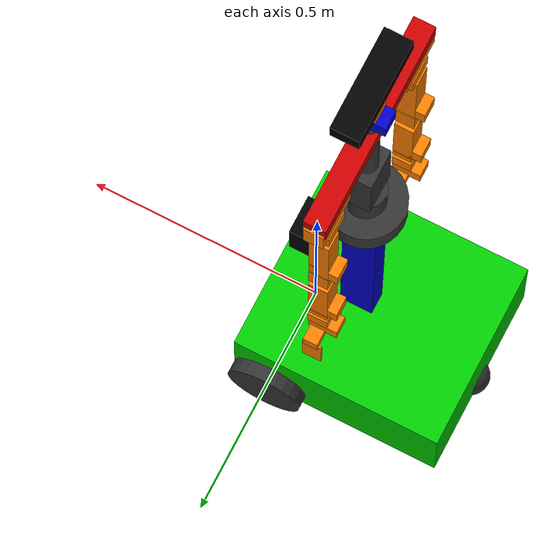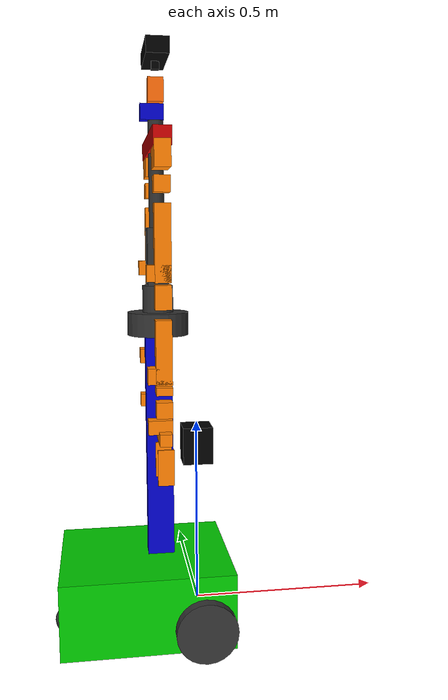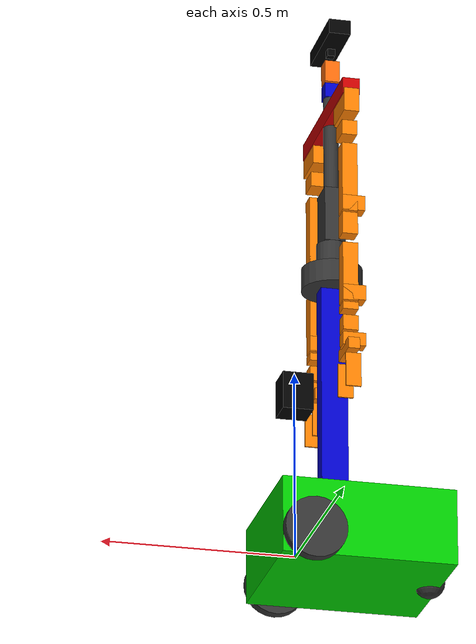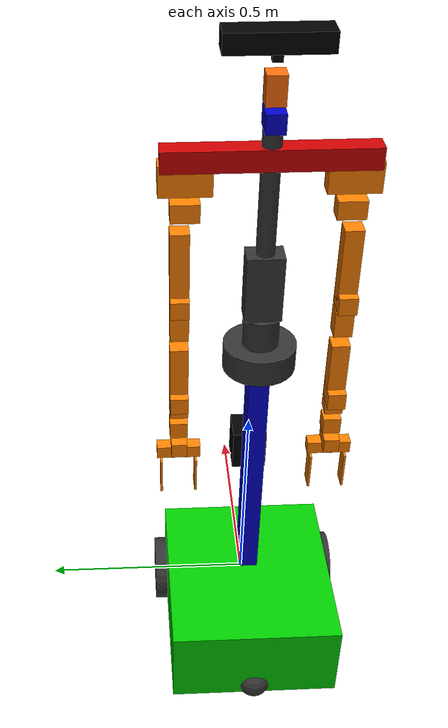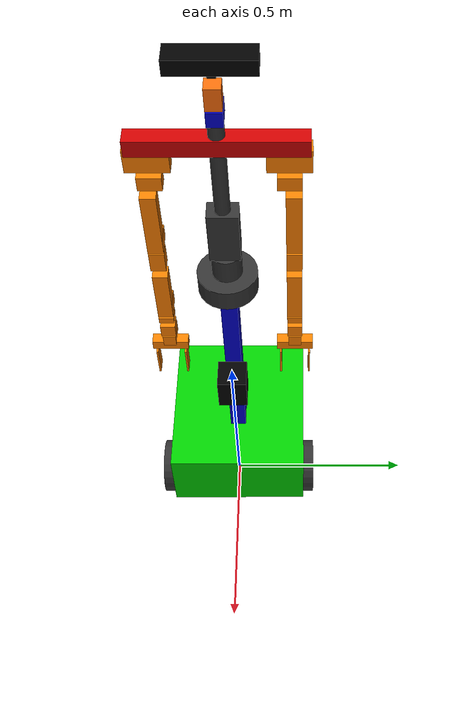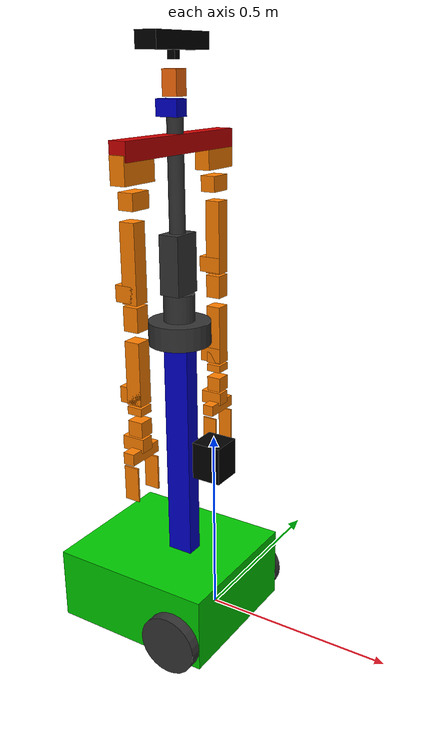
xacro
<?xml version="1.0"?>
<robot name="justina" xmlns:xacro="http://www.ros.org/wiki/xacro">
  <!-- INCLUDES -->
    <xacro:include filename="$(find justina_description)/urdf/test_parameters.xacro" />

    <!-- BASE LINK -->
    <link name="base_link">
        <material name="orange"/>
        <!-- pose and inertial -->
        <pose>0 0 0 0 0 0</pose>
        <inertial>
            <origin rpy="0 0 0" xyz="${-base_size_x/2 + wheel_radius} 0 ${wheel_radius/2}"/>
            <mass value="${base_mass}"/>
            <xacro:box_inertia mass="${base_mass}" x="${base_size_x}" y="${base_size_y}" z="${base_size_z}"/>
        </inertial>
        <!-- body -->
        <collision name="base_front_collision">
            <origin rpy="0 0 0" xyz="${-base_size_x/2 + wheel_radius} 0 ${wheel_radius/2}"/>
            <geometry>
                <box size="${base_size_x} ${base_size_y} ${base_size_z}"/>
            </geometry>
        </collision>
        <visual>
            <origin rpy="0 0 0" xyz="${-base_size_x/2 + wheel_radius} 0 ${wheel_radius/2}"/>
            <geometry>
                <box size="${base_size_x} ${base_size_y} ${base_size_z}"/>
            </geometry>
            <material name="green"/>
        </visual>
        <!-- caster rear -->
        <collision name="caster_front_collision">
            <origin rpy=" 0 0 0" xyz="-${base_size_x-wheel_radius-wheel_radius/4} 0 ${-wheel_radius/2}"/>
            <geometry>
                <sphere radius="${wheel_radius/2}"/>
            </geometry>
        </collision>
        <visual>
            <origin rpy=" 0 0 0" xyz="-${base_size_x-wheel_radius-wheel_radius/4} 0 ${-wheel_radius/2}"/>
            <geometry>
                <sphere radius="${wheel_radius/2}"/>
            </geometry>
            <material name="gray"/>
        </visual>
    </link>
    <!-- LEFT WHEEL LINK -->
    <link name="left_wheel_link">
        <inertial>
            <mass value="${wheel_mass}"/>
            <origin rpy="0 1.5707 1.5707" xyz="0 0 0"/>
            <xacro:cylinder_inertia mass="${wheel_mass}" r="${wheel_radius}" l="${wheel_width}"/>
        </inertial>
        <collision name="left_wheel_collision">
            <origin rpy="0 1.5707 1.5707" xyz="0 0 0"/>
            <geometry>
                <cylinder radius="${wheel_radius}" length="${wheel_width}"/>
            </geometry>
        </collision>
        <visual>
            <origin rpy="0 1.5707 1.5707" xyz="0 0 0"/>
            <geometry>
                <cylinder radius="${wheel_radius}" length="${wheel_width}"/>
            </geometry>
            <material name="gray"/>
        </visual>
    </link>
    <!-- LEFT WHEEL JOINT -->
    <joint name="left_motor" type="continuous">
        <origin rpy="0 0 0" xyz="0.0 ${base_size_y/2+wheel_width/2} 0.0"/>
        <child link="left_wheel_link"/>
        <parent link="base_link"/>
        <axis rpy="0 0 0" xyz="0 1 0"/>
        <dynamics damping="${motor_damping}" friction="${motor_friction}"/>
    </joint>
    <!-- RIGHT WHEEL LINK -->
    <link name="right_wheel_link">
        <inertial>
            <mass value="${wheel_mass}"/>
            <origin rpy="0 1.5707 1.5707" xyz="0 0 0"/>
            <xacro:cylinder_inertia mass="${wheel_mass}" r="${wheel_radius}" l="${wheel_width}"/>
        </inertial>
        <collision name="right_wheel_collision">
            <origin rpy="0 1.5707 1.5707" xyz="0 0 0"/>
            <geometry>
                <cylinder radius="${wheel_radius}" length="${wheel_width}"/>
            </geometry>
        </collision>
        <visual>
            <origin rpy="0 1.5707 1.5707" xyz="0 0 0"/>
            <geometry>
                <cylinder radius="${wheel_radius}" length="${wheel_width}"/>
            </geometry>
            <material name="gray"/>
        </visual>
    </link>
    <!-- RIGHT WHEEL JOINT -->
    <joint name="right_motor" type="continuous">
        <origin rpy="0 0 0" xyz="0 ${-base_size_y/2-wheel_width/2} 0"/>
        <child link="right_wheel_link"/>
        <parent link="base_link"/>
        <axis rpy="0 0 0" xyz="0 1 0"/>
        <dynamics damping="${motor_damping}" friction="${motor_friction}"/>
    </joint>
    <!-- TRANSMISSIONS -->
    <transmission name="left_motor_transmission">
        <type>transmission_interface/SimpleTransmission</type>
        <joint name="left_motor">
            <hardwareInterface>hardware_interface/EffortJointInterface</hardwareInterface>
        </joint>
        <actuator name="left_motor">
            <hardwareInterface>hardware_interface/EffortJointInterface</hardwareInterface>
            <mechanicalReduction>1</mechanicalReduction>
        </actuator>
    </transmission>
    <transmission name="right_motor_transmission">
        <type>transmission_interface/SimpleTransmission</type>
        <joint name="right_motor">
            <hardwareInterface>hardware_interface/EffortJointInterface</hardwareInterface>
        </joint>
        <actuator name="right_motor">
            <hardwareInterface>hardware_interface/EffortJointInterface</hardwareInterface>
            <mechanicalReduction>1</mechanicalReduction>
        </actuator>
    </transmission>

    <gazebo reference="left_wheel_link">
      <mu1 value="100.0" />
      <mu2 value="100.0" />
      <kp  value="1000000.0" />
      <kd  value="1.0" />
      <maxVel  value="100.0" />
      <minDepth  value="0.0" />
    </gazebo>

    <gazebo reference="right_wheel_link">
      <mu1 value="100.0" />
      <mu2 value="100.0" />
      <kp  value="1000000.0" />
      <kd  value="1.0" />
      <maxVel  value="100.0" />
      <minDepth  value="0.0" />
    </gazebo>

    <gazebo reference="base_link">
      <mu1 value="0.0" />
      <mu2 value="0.0" />
      <kp  value="1000000.0" />
      <kd  value="1.0" />
    </gazebo>
    <!-- GAZEBO CONTROL -->
    <gazebo>
        <plugin name="differential_drive_controller" filename="libgazebo_ros_diff_drive.so">
            <publishWheelTF>true</publishWheelTF>
            <robotNamespace>/</robotNamespace>
            <publishTf>1</publishTf>
            <publishWheelJointState>false</publishWheelJointState>
            <alwaysOn>true</alwaysOn>
            <updateRate>100.0</updateRate>
            <leftJoint>left_motor</leftJoint>
            <rightJoint>right_motor</rightJoint>
            <wheelSeparation>${base_size_y+wheel_width}</wheelSeparation>
            <wheelDiameter>${2*wheel_radius}</wheelDiameter>
            <broadcastTF>1</broadcastTF>
            <wheelTorque>20.0</wheelTorque>
            <wheelAcceleration>5</wheelAcceleration>
            <commandTopic>cmd_vel</commandTopic>
            <odometryFrame>odom</odometryFrame>
            <odometryTopic>odom</odometryTopic>
            <pose_covariance_diagonal>[1.0, 1.0, 0.0, 0.0, 0.0, 1.0]</pose_covariance_diagonal>
            <twist_covariance_diagonal>[0.01, 0.0, 0.0, 0.0, 0.0, 0.1]</twist_covariance_diagonal>
            <gaussianNoise>0.05</gaussianNoise>
            <robotBaseFrame>base_link</robotBaseFrame>
            <legacyMode>false</legacyMode>
            <publishOdomTF>true</publishOdomTF>
            <odometrySource>world</odometrySource>
        </plugin>
    </gazebo>

    <!-- LASER LINK AND PLUGINS -->
    <link name="laser_link">
      <visual>
        <origin xyz="0 0 0" rpy="0 0 0"/>
        <geometry> <box size="0.08 0.08 0.1"/></geometry>
        <material name="black"/>
      </visual>
      <collision>
        <origin xyz="0 0 0" rpy="0 0 0"/>
        <geometry> <box size="0.08 0.08 0.1"/></geometry>
      </collision>
      <inertial>
        <origin xyz="0 0 0" rpy="0 0 0"/>
        <mass value="0.1"/>
        <inertia
            ixx="0.000136667" ixy="0.0" ixz="0.0"
            iyy="0.000136667" iyz="0.0"
            izz="0.000106667"/>
      </inertial>
    </link>
    <joint name="laser_connect" type="fixed">
      <origin xyz="0 0 0.44" />
      <parent link="base_link"/>
      <child link="laser_link"/>
    </joint>
    <gazebo reference="laser_link">
    <sensor type="ray" name="hokuyo_sensor">
      <pose>0 0 0 0 0 0</pose>
      <visualize>true</visualize>
      <update_rate>10</update_rate>
      <ray>
        <scan>
          <horizontal>
            <samples>370</samples>
            <resolution>0.5</resolution>
            <min_angle>-1.570796</min_angle>
            <max_angle>1.570796</max_angle>
          </horizontal>
        </scan>
        <range>
          <min>0.10</min>
          <max>10.0</max>
          <resolution>0.01</resolution>
        </range>
        <noise>
          <type>gaussian</type>
          <mean>0.0</mean>
          <stddev>0.01</stddev>
        </noise>
      </ray>
      <plugin name="gazebo_ros_hokuyo_controller" filename="libgazebo_ros_laser.so">
        <topicName>/scan</topicName>
        <frameName>laser_link</frameName>
      </plugin>
    </sensor>
    </gazebo>

        <!--
      SPINE LINKS AND JOINTS
    -->
    <link name="spine_link">
      <visual>
        <origin xyz= "0 0 -0.3" rpy="0 0 0"/>
        <geometry><box size="0.07 0.045 0.7"/></geometry>
        <material name="blue"/>
      </visual>
      <collision>
        <origin xyz= "0 0 -0.3" rpy="0 0 0"/>
        <geometry><box size="0.07 0.045 0.7"/></geometry>
      </collision>
      <inertial>
        <origin xyz="0 0 0" rpy="0 0 0"/>
        <mass value="0.1"/>
        <inertia
            ixx="0.001031" ixy="0.0" ixz="0.0"
            iyy="0.001025" iyz="0.0"
            izz="0.00014"/>
      </inertial>
    </link>

    <joint name="spine_connect" type="fixed">
      <origin xyz= "-0.1 0 0.71" rpy="0 0 0"/>
      <parent link="base_link"/>
      <child link="spine_link"/>
    </joint>

    <!--
        WAIST LINKS AND JOINTS
    -->
    <link name="waist_link">
      <visual>
        <origin xyz= "0 0 -0.1" rpy="0 0 0"/>
        <geometry><cylinder length="0.06" radius="0.08"/></geometry>
        <material name="grey"/>
      </visual>
      <collision>
        <origin xyz= "0 0 -0.1" rpy="0 0 0"/>
        <geometry><cylinder length="0.06" radius="0.08"/></geometry>
      </collision>
      <visual>
        <origin xyz= "0 0 -0.04" rpy="0 0 0"/>
        <geometry><cylinder length="0.08" radius="0.04"/></geometry>
        <material name="grey"/>
      </visual>
      <collision>
        <origin xyz= "0 0 -0.04" rpy="0 0 0"/>
        <geometry><cylinder length="0.08" radius="0.04"/></geometry>
      </collision>
      <visual>
        <origin xyz= "0 0 0.075" rpy="0 0 0"/>
        <geometry><box size="0.055 0.08 0.15" /></geometry>
        <material name="grey"/>
      </visual>
      <collision>
        <origin xyz= "0 0 0.075" rpy="0 0 0"/>
        <geometry><box size="0.055 0.08 0.15" /></geometry>
      </collision>
      <visual>
        <origin xyz= "0 0 0.285" rpy="0 0 0"/>
        <geometry><cylinder length="0.27" radius="0.02"/></geometry>
        <material name="gray"/>
      </visual>
      <collision>
        <origin xyz= "0 0 0.285" rpy="0 0 0"/>
        <geometry><cylinder length="0.27" radius="0.02"/></geometry>
      </collision>
      <inertial>
        <origin xyz="0 0 0" rpy="0 0 0"/>
        <mass value="0.5"/>
        <inertia
            ixx="0.00258333" ixy="0.0" ixz="0.0"
            iyy="0.00258333" iyz="0.0"
            izz="0.0045"/>
      </inertial>
    </link>

    <joint name="waist_connect" type="fixed">
      <origin xyz= "0 0 0.16" rpy="0 0 0"/>
      <parent link="spine_link"/>
      <child link="waist_link"/>
    </joint>

    <link name="shoulders_link">
      <visual>
        <origin xyz= "0 0 0" rpy="0 0 0"/>
        <geometry><box size="0.045 0.43 0.045"/></geometry>
        <material name="red"/>
      </visual>
      <collision>
        <origin xyz= "0 0 0" rpy="0 0 0"/>
        <geometry><box size="0.045 0.43 0.045"/></geometry>
      </collision>
      <inertial>
        <origin xyz="0 0 0" rpy="0 0 0"/>
        <mass value="0.5"/>
        <inertia
            iyy="0.00075" ixy="0.0" ixz="0.0"
            ixx="0.003504" iyz="0.0"
            izz="0.003504"/>
      </inertial>
    </link>

    <joint name="shoulders_connect" type="fixed">
      <origin xyz="0 0 0.36" rpy="0 0 0"/>
      <parent link="waist_link"/>
      <child link="shoulders_link"/>
    </joint>

    <!--
      LEFT ARM LINKS AND JOINTS
  -->
  <link name="shoulders_left_link">
    <visual>
      <origin xyz="0 -0.01 0.02" rpy = "0 0 0"/>
      <geometry>
        <box size = "0.04025 0.108 0.065"/>
      </geometry>
      <material name = "la_material"><color rgba="1.0 0.5 0 1"/></material>
    </visual>
    <collision>
      <origin xyz="0 -0.01 0.02" rpy = "0 0 0"/>
      <geometry>
        <box size = "0.04025 0.108 0.065"/>
      </geometry>
    </collision>
    <inertial>
      <origin xyz="0 -0.01 0.02" rpy = "0 0 0"/>
      <mass value="0.125"/>
      <inertia
        ixx="0.0015" ixy="0.0" ixz="0.0"
        iyy="0.002175" iyz="0.0"
        izz="0.003075"/>
    </inertial>
  </link>
  <link name="left_arm_link1">
    <visual>
      <origin xyz="0 -0.01 -0.04881" rpy = "0 0 0"/>
      <geometry>
        <box size = "0.04025 0.06 0.04025"/>
      </geometry>
      <material name = "la_material"><color rgba="1.0 0.5 0 1"/></material>
    </visual>
    <collision>
      <origin xyz="0 -0.01 -0.04881" rpy = "0 0 0"/>
      <geometry>
        <box size = "0.04025 0.06 0.04025"/>
      </geometry>
    </collision>
    <inertial>
      <origin xyz="0 -0.01 -0.04881" rpy = "0 0 0"/>
      <mass value="0.125"/>
      <inertia
        ixx="0.0015" ixy="0.0" ixz="0.0"
        iyy="0.002175" iyz="0.0"
        izz="0.003075"/>
    </inertial>
  </link>
  <link name="left_arm_link2">
    <visual>
      <origin xyz="0 0 -0.125" rpy = "0 0 0"/>
      <geometry>
        <box size = "0.04025 0.04025 0.19"/>
      </geometry>
      <material name = "la_material"><color rgba="1.0 0.5 0 1"/></material>
    </visual>
    <visual>
      <origin xyz="-0.01 0 -0.197" rpy = "0 0 0"/>
      <geometry>
        <box size = "0.06 0.04025 0.04025"/>
      </geometry>
      <material name = "la_material"><color rgba="1.0 0.5 0 1"/></material>
    </visual>
    <collision>
      <origin xyz="0 0 -0.125" rpy = "0 0 0"/>
      <geometry>
        <box size = "0.04025 0.04025 0.19"/>
      </geometry>
    </collision>
    <collision>
      <origin xyz="-0.01 0 -0.197" rpy = "0 0 0"/>
      <geometry>
        <box size = "0.06 0.04025 0.04025"/>
      </geometry>
    </collision>
    <inertial>
      <origin xyz="0 0 -0.175" rpy = "0 0 0"/>
      <mass value="0.155"/>
      <inertia
        ixx="0.0015" ixy="0.0" ixz="0.0"
        iyy="0.002175" iyz="0.0"
        izz="0.003075"/>
    </inertial>
  </link>
  <link name="left_arm_link3">
    <visual>
      <origin xyz="0 0 -0.04" rpy = "0 0 0"/>
      <geometry>
        <box size = "0.04025 0.04025 0.06"/>
      </geometry>
      <material name = "la_material"><color rgba="1.0 0.5 0 1"/></material>
    </visual>
    <collision>
      <origin xyz="0 0 -0.04" rpy = "0 0 0"/>
      <geometry>
        <box size = "0.04025 0.04025 0.06"/>
      </geometry>
    </collision>
    <inertial>
      <origin xyz="0 0 -0.04" rpy = "0 0 0"/>
      <mass value="0.125"/>
      <inertia
        ixx="0.0015" ixy="0.0" ixz="0.0"
        iyy="0.002175" iyz="0.0"
        izz="0.003075"/>
    </inertial>
  </link>
  <link name="left_arm_link4">
    <visual>
      <origin xyz="0 0 -0.11" rpy = "0 0 0"/>
      <geometry>
        <box size = "0.04025 0.04025 0.16"/>
      </geometry>
      <material name = "la_material"><color rgba="1.0 0.5 0 1"/></material>
    </visual>
    <visual>
      <origin xyz="-0.01 0 -0.167" rpy = "0 0 0"/>
      <geometry>
        <box size = "0.06 0.04025 0.04025"/>
      </geometry>
      <material name = "la_material"><color rgba="1.0 0.5 0 1"/></material>
    </visual>
    <collision>
      <origin xyz="0 0 -0.11" rpy = "0 0 0"/>
      <geometry>
        <box size = "0.04025 0.04025 0.16"/>
      </geometry>
    </collision>
    <collision>
      <origin xyz="-0.01 0 -0.167" rpy = "0 0 0"/>
      <geometry>
        <box size = "0.06 0.04025 0.04025"/>
      </geometry>
    </collision>
    <inertial>
      <origin xyz="-0.01 0 -0.147" rpy = "0 0 0"/>
      <mass value="0.125"/>
      <inertia
        ixx="0.0015" ixy="0.0" ixz="0.0"
        iyy="0.002175" iyz="0.0"
        izz="0.003075"/>
    </inertial>
  </link>
  <link name="left_arm_link5">
    <visual>
      <origin xyz="0 0 -0.025" rpy = "0 0 0"/>
      <geometry>
        <box size = "0.04025 0.04025 0.02"/>
      </geometry>
      <material name = "la_material"><color rgba="1.0 0.5 0 1"/></material>
    </visual>
    <collision>
      <origin xyz="0 0 -0.025" rpy = "0 0 0"/>
      <geometry>
        <box size = "0.04025 0.04025 0.02"/>
      </geometry>
    </collision>
    <inertial>
      <origin xyz="0 0 -0.025" rpy = "0 0 0"/>
      <mass value="0.125"/>
      <inertia
        ixx="0.0015" ixy="0.0" ixz="0.0"
        iyy="0.002175" iyz="0.0"
        izz="0.003075"/>
    </inertial>
  </link>
  <link name="left_arm_link6">
    <visual>
      <origin xyz="0 0 -0.042" rpy = "0 0 0"/>
      <geometry>
        <box size = "0.04025 0.04025 0.04"/>
      </geometry>
      <material name = "la_material"><color rgba="1.0 0.5 0 1"/></material>
    </visual>
    <collision>
      <origin xyz="0 0 -0.042" rpy = "0 0 0"/>
      <geometry>
        <box size = "0.04025 0.04025 0.04"/>
      </geometry>
    </collision>
    <inertial>
      <origin xyz="0 0 -0.042" rpy = "0 0 0"/>
      <mass value="0.125"/>
      <inertia
        ixx="0.0015" ixy="0.0" ixz="0.0"
        iyy="0.002175" iyz="0.0"
        izz="0.003075"/>
    </inertial>
  </link>
  <link name="left_arm_link7">
    <visual>
      <origin xyz="-0.01 0 -0.03" rpy = "0 0 0"/>
      <geometry>
        <box size = "0.06 0.03525 0.03525"/>
      </geometry>
      <material name = "la_material"><color rgba="1.0 0.5 0 1"/></material>
    </visual>
    <visual>
      <origin xyz="0 0 -0.055" rpy = "0 0 0"/>
      <geometry>
        <box size = "0.03 0.1 0.03"/>
      </geometry>
      <material name = "la_material"><color rgba="1.0 0.5 0 1"/></material>
    </visual>
    <collision>
      <origin xyz="-0.01 0 -0.03" rpy = "0 0 0"/>
      <geometry>
        <box size = "0.06 0.03525 0.03525"/>
      </geometry>
    </collision>
    <collision>
      <origin xyz="0 0 -0.055" rpy = "0 0 0"/>
      <geometry>
        <box size = "0.03 0.1 0.03"/>
      </geometry>
    </collision>
    <inertial>
      <origin xyz="-0.01 0 -0.05" rpy = "0 0 0"/>
      <mass value="0.125"/>
      <inertia
        ixx="0.0015" ixy="0.0" ixz="0.0"
        iyy="0.002175" iyz="0.0"
        izz="0.003075"/>
    </inertial>
  </link>
  <link name="left_arm_grip_left">
    <visual>
      <origin xyz="0 0 -0.065" rpy = "0 0 0"/>
      <geometry>
        <box size = "0.04 0.005 0.09"/>
      </geometry>
      <material name = "la_material"><color rgba="1.0 0.5 0 1"/></material>
    </visual>
    <collision>
      <origin xyz="0 0 -0.065" rpy = "0 0 0"/>
      <geometry>
        <box size = "0.04 0.005 0.09"/>
      </geometry>
    </collision>
    <inertial>
      <origin xyz="0 0 -0.065" rpy = "0 0 0"/>
      <mass value="0.125"/>
      <inertia
        ixx="0.0015" ixy="0.0" ixz="0.0"
        iyy="0.002175" iyz="0.0"
        izz="0.003075"/>
    </inertial>
  </link>
  <link name="left_arm_grip_right">
    <visual>
      <origin xyz="0 0 -0.065" rpy = "0 0 0"/>
      <geometry>
        <box size = "0.04 0.005 0.09"/>
      </geometry>
      <material name = "la_material"><color rgba="1.0 0.5 0 1"/></material>
    </visual>
    <collision>
      <origin xyz="0 0 -0.065" rpy = "0 0 0"/>
      <geometry>
        <box size = "0.04 0.005 0.09"/>
      </geometry>
    </collision>
    <inertial>
      <origin xyz="0 0 -0.065" rpy = "0 0 0"/>
      <mass value="0.125"/>
      <inertia
        ixx="0.0015" ixy="0.0" ixz="0.0"
        iyy="0.002175" iyz="0.0"
        izz="0.003075"/>
    </inertial>
  </link>
  <link name="left_arm_grip_center"/>

  <joint name="shoulders_left_connect" type="fixed">
    <origin xyz="0 0.175 -0.06" rpy="0 0 0"/>
    <parent link="shoulders_link"/>
    <child link="shoulders_left_link"/>
  </joint>
  <joint name="la_1_joint" type="revolute">
    <origin xyz="0 0.0 0" rpy="0 0 0"/>
    <parent link="shoulders_left_link"/>
    <child link="left_arm_link1"/>
    <axis xyz="0 -1 0" />
    <dynamics damping ="0.1" />
    <limit effort="16.0" velocity="3.0" lower="-1.7" upper="1.7"/>
  </joint>
  <joint name="la_2_joint" type="revolute">
    <origin xyz="0 0.0 -0.06381" rpy="0 0 0"/>
    <parent link="left_arm_link1"/>
    <child link="left_arm_link2"/>
    <axis xyz="1 0 0" />
    <dynamics damping ="0.1" />
    <limit effort="8.0" velocity="3.0" lower="-0.75" upper="1.85"/>
  </joint>
  <joint name="la_3_joint" type="revolute">
    <origin xyz="0 0.0 -0.215" rpy="0 0 0"/>
    <parent link="left_arm_link2"/>
    <child link="left_arm_link3"/>
    <axis xyz="0 0 1" />
    <dynamics damping ="0.1" />
    <limit effort="6.0" velocity="3.0" lower="-2.5" upper="2.5"/>
  </joint>
  <joint name="la_4_joint" type="revolute">
    <origin xyz="0 0.0 -0.065" rpy="0 0 0"/>
    <parent link="left_arm_link3"/>
    <child link="left_arm_link4"/>
    <axis xyz="0 -1 0" />
    <dynamics damping ="0.1" />
    <limit effort="8.0" velocity="3.0" lower="-1.8" upper="1.8"/>
  </joint>
  <joint name="la_5_joint" type="revolute">
    <origin xyz="0 0.0 -0.18" rpy="0 0 0"/>
    <parent link="left_arm_link4"/>
    <child link="left_arm_link5"/>
    <axis xyz="0 0 1" />
    <dynamics damping ="0.1" />
    <limit effort="6.0" velocity="3.0" lower="-2.5" upper="2.5"/>
  </joint>
  <joint name="la_6_joint" type="revolute">
    <origin xyz="0 0.0 -0.03" rpy="0 0 0"/>
    <parent link="left_arm_link5"/>
    <child link="left_arm_link6"/>
    <axis xyz="0 -1 0" />
    <dynamics damping ="0.1" />
    <limit effort="6.0" velocity="3.0" lower="-1.4" upper="1.57"/>
  </joint>
  <joint name="la_7_joint" type="revolute">
    <origin xyz="0 0.0 -0.055" rpy="0 0 0"/>
    <parent link="left_arm_link6"/>
    <child link="left_arm_link7"/>
    <axis xyz="0 0 1" />
    <dynamics damping ="0.1" />
    <limit effort="3.0" velocity="3.0" lower="-2.5" upper="2.5"/>
  </joint>
  <joint name="la_grip_left" type="revolute">
    <origin xyz="0 0.04 -0.06" rpy="0 0 0"/>
    <parent link="left_arm_link7"/>
    <child link="left_arm_grip_left"/>
    <axis xyz="1 0 0" />
    <dynamics damping ="0.1" />
    <limit effort="3.0" velocity="3.0" lower="-0.3" upper="1.5"/>
  </joint>
  <joint name="la_grip_right" type="revolute">
    <origin xyz="0 -0.04 -0.06" rpy="0 0 0"/>
    <parent link="left_arm_link7"/>
    <child link="left_arm_grip_right"/>
    <axis xyz="-1 0 0" />
    <dynamics damping ="0.1" />
    <limit effort="3.0" velocity="3.0" lower="-0.3" upper="1.5"/>
  </joint>
  <joint name="la_grip_center_joint" type="fixed">
    <origin xyz="0 0 -0.13" rpy="0 0 0"/>
    <parent link="left_arm_link7"/>
    <child link="left_arm_grip_center"/>
  </joint>

  <!--
      RIGHT ARM LINKS AND JOINTS
  -->
  <link name="shoulders_right_link">
    <visual>
      <origin xyz="0 0.01 0.02" rpy = "0 0 0"/>
      <geometry>
        <box size = "0.04025 0.108 0.065"/>
      </geometry>
      <material name = "la_material"><color rgba="1.0 0.5 0 1"/></material>
    </visual>
    <collision>
      <origin xyz="0 0.01 0.02" rpy = "0 0 0"/>
      <geometry>
        <box size = "0.04025 0.108 0.065"/>
      </geometry>
    </collision>
    <inertial>
      <origin xyz="0 0.01 0.02" rpy = "0 0 0"/>
      <mass value="0.125"/>
      <inertia
        ixx="0.0015" ixy="0.0" ixz="0.0"
        iyy="0.002175" iyz="0.0"
        izz="0.003075"/>
    </inertial>
  </link>
  <link name="right_arm_link1">
    <visual>
      <origin xyz="0 0.01 -0.04881" rpy = "0 0 0"/>
      <geometry>
        <box size = "0.04025 0.06 0.04025"/>
      </geometry>
      <material name = "la_material"><color rgba="1.0 0.5 0 1"/></material>
    </visual>
    <collision>
      <origin xyz="0 0.01 -0.04881" rpy = "0 0 0"/>
      <geometry>
        <box size = "0.04025 0.06 0.04025"/>
      </geometry>
    </collision>
    <inertial>
      <origin xyz="0 0.01 -0.04881" rpy = "0 0 0"/>
      <mass value="0.125"/>
      <inertia
        ixx="0.0015" ixy="0.0" ixz="0.0"
        iyy="0.002175" iyz="0.0"
        izz="0.003075"/>
    </inertial>
  </link>
  <link name="right_arm_link2">
    <visual>
      <origin xyz="0 0 -0.125" rpy = "0 0 0"/>
      <geometry>
        <box size = "0.04025 0.04025 0.19"/>
      </geometry>
      <material name = "la_material"><color rgba="1.0 0.5 0 1"/></material>
    </visual>
    <visual>
      <origin xyz="-0.01 0 -0.197" rpy = "0 0 0"/>
      <geometry>
        <box size = "0.06 0.04025 0.04025"/>
      </geometry>
      <material name = "la_material"><color rgba="1.0 0.5 0 1"/></material>
    </visual>
    <collision>
      <origin xyz="0 0 -0.125" rpy = "0 0 0"/>
      <geometry>
        <box size = "0.04025 0.04025 0.19"/>
      </geometry>
    </collision>
    <collision>
      <origin xyz="-0.01 0 -0.197" rpy = "0 0 0"/>
      <geometry>
        <box size = "0.06 0.04025 0.04025"/>
      </geometry>
    </collision>
    <inertial>
      <origin xyz="0 0 -0.175" rpy = "0 0 0"/>
      <mass value="0.155"/>
      <inertia
        ixx="0.0015" ixy="0.0" ixz="0.0"
        iyy="0.002175" iyz="0.0"
        izz="0.003075"/>
    </inertial>
  </link>
  <link name="right_arm_link3">
    <visual>
      <origin xyz="0 0 -0.04" rpy = "0 0 0"/>
      <geometry>
        <box size = "0.04025 0.04025 0.06"/>
      </geometry>
      <material name = "la_material"><color rgba="1.0 0.5 0 1"/></material>
    </visual>
    <collision>
      <origin xyz="0 0 -0.04" rpy = "0 0 0"/>
      <geometry>
        <box size = "0.04025 0.04025 0.06"/>
      </geometry>
    </collision>
    <inertial>
      <origin xyz="0 0 -0.04" rpy = "0 0 0"/>
      <mass value="0.125"/>
      <inertia
        ixx="0.0015" ixy="0.0" ixz="0.0"
        iyy="0.002175" iyz="0.0"
        izz="0.003075"/>
    </inertial>
  </link>
  <link name="right_arm_link4">
    <visual>
      <origin xyz="0 0 -0.11" rpy = "0 0 0"/>
      <geometry>
        <box size = "0.04025 0.04025 0.16"/>
      </geometry>
      <material name = "la_material"><color rgba="1.0 0.5 0 1"/></material>
    </visual>
    <visual>
      <origin xyz="-0.01 0 -0.167" rpy = "0 0 0"/>
      <geometry>
        <box size = "0.06 0.04025 0.04025"/>
      </geometry>
      <material name = "la_material"><color rgba="1.0 0.5 0 1"/></material>
    </visual>
    <collision>
      <origin xyz="0 0 -0.11" rpy = "0 0 0"/>
      <geometry>
        <box size = "0.04025 0.04025 0.16"/>
      </geometry>
    </collision>
    <collision>
      <origin xyz="-0.01 0 -0.167" rpy = "0 0 0"/>
      <geometry>
        <box size = "0.06 0.04025 0.04025"/>
      </geometry>
    </collision>
    <inertial>
      <origin xyz="-0.01 0 -0.147" rpy = "0 0 0"/>
      <mass value="0.125"/>
      <inertia
        ixx="0.0015" ixy="0.0" ixz="0.0"
        iyy="0.002175" iyz="0.0"
        izz="0.003075"/>
    </inertial>
  </link>
  <link name="right_arm_link5">
    <visual>
      <origin xyz="0 0 -0.025" rpy = "0 0 0"/>
      <geometry>
        <box size = "0.04025 0.04025 0.02"/>
      </geometry>
      <material name = "la_material"><color rgba="1.0 0.5 0 1"/></material>
    </visual>
    <collision>
      <origin xyz="0 0 -0.025" rpy = "0 0 0"/>
      <geometry>
        <box size = "0.04025 0.04025 0.02"/>
      </geometry>
    </collision>
    <inertial>
      <origin xyz="0 0 -0.025" rpy = "0 0 0"/>
      <mass value="0.125"/>
      <inertia
        ixx="0.0015" ixy="0.0" ixz="0.0"
        iyy="0.002175" iyz="0.0"
        izz="0.003075"/>
    </inertial>
  </link>
  <link name="right_arm_link6">
    <visual>
      <origin xyz="0 0 -0.042" rpy = "0 0 0"/>
      <geometry>
        <box size = "0.04025 0.04025 0.04"/>
      </geometry>
      <material name = "la_material"><color rgba="1.0 0.5 0 1"/></material>
    </visual>
    <collision>
      <origin xyz="0 0 -0.042" rpy = "0 0 0"/>
      <geometry>
        <box size = "0.04025 0.04025 0.04"/>
      </geometry>
    </collision>
    <inertial>
      <origin xyz="0 0 -0.042" rpy = "0 0 0"/>
      <mass value="0.125"/>
      <inertia
        ixx="0.0015" ixy="0.0" ixz="0.0"
        iyy="0.002175" iyz="0.0"
        izz="0.003075"/>
    </inertial>
  </link>
  <link name="right_arm_link7">
    <visual>
      <origin xyz="-0.01 0 -0.03" rpy = "0 0 0"/>
      <geometry>
        <box size = "0.06 0.03525 0.03525"/>
      </geometry>
      <material name = "la_material"><color rgba="1.0 0.5 0 1"/></material>
    </visual>
    <visual>
      <origin xyz="0 0 -0.055" rpy = "0 0 0"/>
      <geometry>
        <box size = "0.03 0.1 0.03"/>
      </geometry>
      <material name = "la_material"><color rgba="1.0 0.5 0 1"/></material>
    </visual>
    <collision>
      <origin xyz="-0.01 0 -0.03" rpy = "0 0 0"/>
      <geometry>
        <box size = "0.06 0.03525 0.03525"/>
      </geometry>
    </collision>
    <collision>
      <origin xyz="0 0 -0.055" rpy = "0 0 0"/>
      <geometry>
        <box size = "0.03 0.1 0.03"/>
      </geometry>
    </collision>
    <inertial>
      <origin xyz="-0.01 0 -0.05" rpy = "0 0 0"/>
      <mass value="0.125"/>
      <inertia
        ixx="0.0015" ixy="0.0" ixz="0.0"
        iyy="0.002175" iyz="0.0"
        izz="0.003075"/>
    </inertial>
  </link>
  <link name="right_arm_grip_left">
    <visual>
      <origin xyz="0 0 -0.065" rpy = "0 0 0"/>
      <geometry>
        <box size = "0.04 0.005 0.09"/>
      </geometry>
      <material name = "la_material"><color rgba="1.0 0.5 0 1"/></material>
    </visual>
    <collision>
      <origin xyz="0 0 -0.065" rpy = "0 0 0"/>
      <geometry>
        <box size = "0.04 0.005 0.09"/>
      </geometry>
    </collision>
    <inertial>
      <origin xyz="0 0 -0.065" rpy = "0 0 0"/>
      <mass value="0.125"/>
      <inertia
        ixx="0.0015" ixy="0.0" ixz="0.0"
        iyy="0.002175" iyz="0.0"
        izz="0.003075"/>
    </inertial>
  </link>
  <link name="right_arm_grip_right">
    <visual>
      <origin xyz="0 0 -0.065" rpy = "0 0 0"/>
      <geometry>
        <box size = "0.04 0.005 0.09"/>
      </geometry>
      <material name = "la_material"><color rgba="1.0 0.5 0 1"/></material>
    </visual>
    <collision>
      <origin xyz="0 0 -0.065" rpy = "0 0 0"/>
      <geometry>
        <box size = "0.04 0.005 0.09"/>
      </geometry>
    </collision>
    <inertial>
      <origin xyz="0 0 -0.065" rpy = "0 0 0"/>
      <mass value="0.125"/>
      <inertia
        ixx="0.0015" ixy="0.0" ixz="0.0"
        iyy="0.002175" iyz="0.0"
        izz="0.003075"/>
    </inertial>
  </link>
  <link name="right_arm_grip_center"/>

  <joint name="shoulders_right_connect" type="fixed">
    <origin xyz="0 -0.175 -0.06" rpy="0 0 0"/>
    <parent link="shoulders_link"/>
    <child link="shoulders_right_link"/>
  </joint>
  <joint name="ra_1_joint" type="revolute">
    <origin xyz="0 0.0 0" rpy="0 0 0"/>
    <parent link="shoulders_right_link"/>
    <child link="right_arm_link1"/>
    <axis xyz="0 -1 0" />
    <dynamics damping ="0.1" />
    <limit effort="16.0" velocity="3.0" lower="-1.7" upper="1.7"/>
  </joint>
  <joint name="ra_2_joint" type="revolute">
    <origin xyz="0 0.0 -0.06381" rpy="0 0 0"/>
    <parent link="right_arm_link1"/>
    <child link="right_arm_link2"/>
    <axis xyz="1 0 0" />
    <dynamics damping ="0.1" />
    <limit effort="8.0" velocity="3.0" lower="-1.85" upper="0.75"/>
  </joint>
  <joint name="ra_3_joint" type="revolute">
    <origin xyz="0 0.0 -0.215" rpy="0 0 0"/>
    <parent link="right_arm_link2"/>
    <child link="right_arm_link3"/>
    <axis xyz="0 0 1" />
    <dynamics damping ="0.1" />
    <limit effort="6.0" velocity="3.0" lower="-2.5" upper="2.5"/>
  </joint>
  <joint name="ra_4_joint" type="revolute">
    <origin xyz="0 0.0 -0.065" rpy="0 0 0"/>
    <parent link="right_arm_link3"/>
    <child link="right_arm_link4"/>
    <axis xyz="0 -1 0" />
    <dynamics damping ="0.1" />
    <limit effort="8.0" velocity="3.0" lower="-1.8" upper="1.8"/>
  </joint>
  <joint name="ra_5_joint" type="revolute">
    <origin xyz="0 0.0 -0.18" rpy="0 0 0"/>
    <parent link="right_arm_link4"/>
    <child link="right_arm_link5"/>
    <axis xyz="0 0 1" />
    <dynamics damping ="0.1" />
    <limit effort="6.0" velocity="3.0" lower="-2.5" upper="2.5"/>
  </joint>
  <joint name="ra_6_joint" type="revolute">
    <origin xyz="0 0.0 -0.03" rpy="0 0 0"/>
    <parent link="right_arm_link5"/>
    <child link="right_arm_link6"/>
    <axis xyz="0 -1 0" />
    <dynamics damping ="0.1" />
    <limit effort="6.0" velocity="3.0" lower="-1.4" upper="1.57"/>
  </joint>
  <joint name="ra_7_joint" type="revolute">
    <origin xyz="0 0.0 -0.055" rpy="0 0 0"/>
    <parent link="right_arm_link6"/>
    <child link="right_arm_link7"/>
    <axis xyz="0 0 1" />
    <dynamics damping ="0.1" />
    <limit effort="3.0" velocity="3.0" lower="-2.5" upper="2.5"/>
  </joint>
  <joint name="ra_grip_left" type="revolute">
    <origin xyz="0 0.04 -0.06" rpy="0 0 0"/>
    <parent link="right_arm_link7"/>
    <child link="right_arm_grip_left"/>
    <axis xyz="1 0 0" />
    <dynamics damping ="0.1" />
    <limit effort="3.0" velocity="3.0" lower="-0.3" upper="1.5"/>
  </joint>
  <joint name="ra_grip_right" type="revolute">
    <origin xyz="0 -0.04 -0.06" rpy="0 0 0"/>
    <parent link="right_arm_link7"/>
    <child link="right_arm_grip_right"/>
    <axis xyz="-1 0 0" />
    <dynamics damping ="0.1" />
    <limit effort="3.0" velocity="3.0" lower="-0.3" upper="1.5"/>
  </joint>
  <joint name="ra_grip_center_joint" type="fixed">
    <origin xyz="0 0 -0.13" rpy="0 0 0"/>
    <parent link="right_arm_link7"/>
    <child link="right_arm_grip_center"/>
  </joint>
  <!--
      HEAD LINKS AND JOINTS
  -->
  <link name="head_link1">
    <visual>
      <origin xyz= "-0.01 0 0.03" rpy="0 0 0"/>
      <geometry><box size="0.06 0.04 0.04"/></geometry>
      <material name="blue"/>
    </visual>
    <collision>
      <origin xyz= "-0.01 0 0.03" rpy="0 0 0"/>
      <geometry><box size="0.06 0.04 0.04"/></geometry>
    </collision>
    <inertial>
      <origin xyz="0.0 0 0.0" rpy = "0 0 0"/>
      <mass value = "0.15" />
      <inertia ixx = "0.00052" iyy = "0.00052" izz = "0.00004" ixy = "0" ixz = "0" iyz = "0" />
    </inertial>
  </link>

  <joint name="shoulders_head_connect" type="fixed">
    <origin xyz="0 0 0.05" rpy="0 0 0"/>
    <parent link="shoulders_link"/>
    <child link="head_link1"/>
  </joint>

  <link name="head_link2">
    <visual>
      <origin xyz= "0.0 0 0.035" rpy="0 0 0"/>
      <geometry>
        <box size="0.04 0.04 0.06"/>
      </geometry>
      <material name="orange"/>
    </visual>
    <collision>
      <origin xyz= "0.0 0 0.035" rpy="0 0 0"/>
      <geometry>
        <box size = "0.04 0.04 0.06"/>
      </geometry>
    </collision>
    <inertial>
      <origin xyz="0.0 0 0.0" rpy = "0 0 0"/>
      <mass value = "0.15" />
      <inertia ixx = "0.00003125" iyy = "0.00003125" izz = "0.00003125" ixy = "0" ixz = "0" iyz = "0" />
    </inertial>
  </link>

  <joint name="head_pan" type="revolute">
    <origin xyz="0.0 0 0.05" rpy="0 0 0" />
    <parent link="head_link1"/>
    <child link="head_link2"/>
    <axis xyz="0 0 1" />
    <dynamics damping ="0.1" />
    <limit effort="6.0" velocity="3.0" lower="-3.14" upper="3.14"/>
  </joint>

  <link name="neck_link">
    <visual>
      <origin xyz="0 0 0.035" rpy="0 0 0"/>
      <geometry>
        <box size="0.02 0.02 0.02"/>
      </geometry>
      <material name="black"/>
    </visual>
    <collision>
      <origin xyz= "0 0 0.035" rpy="0 0 0"/>
      <geometry>
        <box size="0.02 0.02 0.02"/>
      </geometry>
    </collision>
    <inertial>
      <origin xyz="0.0 0 0.0" rpy = "0 0 0"/>
      <mass value = "0.15" />
      <inertia ixx = "0.00006205" iyy = "0.000555" izz = "0.0005776" ixy = "0" ixz = "0" iyz = "0" />
    </inertial>
  </link>

  <joint name="head_tilt" type="revolute">
    <origin xyz="0.0 0 0.06" rpy="0 0 0" />
    <parent link="head_link2"/>
    <child link="neck_link"/>
    <axis xyz="0 -1 0" />
    <dynamics damping ="0.1" />
    <limit effort="6.0" velocity="3.0" lower="-1.2" upper="1.0"/>
  </joint>

  <link name="kinect_base">
    <visual>
      <origin xyz="0 0 0" rpy="0 0 0"/>
      <geometry>
        <box size=" 0.058 0.207 0.04"/>
      </geometry>
      <material name="black"/>
    </visual>
    <collision>
      <origin xyz= "0 0 0" rpy="0 0 0"/>
      <geometry>
        <box size=" 0.058 0.207 0.04"/>
      </geometry>
    </collision>
    <inertial>
      <origin xyz="0.0 0 0.0" rpy = "0 0 0"/>
      <mass value = "0.15" />
      <inertia ixx = "0.00006205" iyy = "0.000555" izz = "0.0005776" ixy = "0" ixz = "0" iyz = "0" />
    </inertial>
  </link>

  <joint name="kinect_base_connect" type="fixed">
    <origin xyz="0 0 0.065" rpy="0 0 0"/>
    <parent link="neck_link"/>
    <child link="kinect_base"/>
  </joint>

  <link name="kinect_link"/>

  <joint name="kinect_connect" type="fixed">
    <origin xyz="0 0 0" rpy="-1.5708 0 -1.5708"/>
    <parent link="kinect_base"/>
    <child link="kinect_link"/>
  </joint>

  <!--
      GRIPPER FRICTIONS
  -->
  <gazebo reference="left_arm_grip_left">
    <mu1>100.0</mu1>
    <mu2>100.0</mu2>
    <minDepth>0.003</minDepth>
    <maxVel>0</maxVel>
  </gazebo>
  <gazebo reference="left_arm_grip_right">
    <mu1>100.0</mu1>
    <mu2>100.0</mu2>
    <minDepth>0.003</minDepth>
    <maxVel>0</maxVel>
  </gazebo>
  <gazebo reference="right_arm_grip_left">
    <mu1>100.0</mu1>
    <mu2>100.0</mu2>
    <minDepth>0.003</minDepth>
    <maxVel>0</maxVel>
  </gazebo>
  <gazebo reference="right_arm_grip_right">
    <mu1>100.0</mu1>
    <mu2>100.0</mu2>
    <minDepth>0.003</minDepth>
    <maxVel>0</maxVel>
  </gazebo>

    <!--
      HEAD TRANSMISSIONS
  -->
    <transmission name="head_pan_transmission">
      <type>transmission_interface/SimpleTransmission</type>
      <joint name="head_pan">
        <hardwareInterface>hardware_interface/EffortJointInterface</hardwareInterface>
      </joint>
      <actuator name="head_pan_motor">
        <hardwareInterface>hardware_interface/EffortJointInterface</hardwareInterface>
        <mechanicalReduction>1</mechanicalReduction>
      </actuator>
    </transmission>
    <transmission name="head_tilt_transmission">
      <type>transmission_interface/SimpleTransmission</type>
      <joint name="head_tilt">
        <hardwareInterface>hardware_interface/EffortJointInterface</hardwareInterface>
      </joint>
      <actuator name="head_tilt_motor">
        <hardwareInterface>hardware_interface/EffortJointInterface</hardwareInterface>
        <mechanicalReduction>1</mechanicalReduction>
      </actuator>
    </transmission>

    <!--
      LEFT ARM TRANSMISSIONS
  -->
    <transmission name="la_1_transmission">
      <type>transmission_interface/SimpleTransmission</type>
      <joint name="la_1_joint">
        <hardwareInterface>hardware_interface/EffortJointInterface</hardwareInterface>
      </joint>
      <actuator name="la_1_motor">
        <hardwareInterface>hardware_interface/EffortJointInterface</hardwareInterface>
        <mechanicalReduction>1</mechanicalReduction>
      </actuator>
    </transmission>
    <transmission name="la_2_transmission">
      <type>transmission_interface/SimpleTransmission</type>
      <joint name="la_2_joint">
        <hardwareInterface>hardware_interface/EffortJointInterface</hardwareInterface>
      </joint>
      <actuator name="la_2_motor">
        <hardwareInterface>hardware_interface/EffortJointInterface</hardwareInterface>
        <mechanicalReduction>1</mechanicalReduction>
      </actuator>
    </transmission>
    <transmission name="la_3_transmission">
      <type>transmission_interface/SimpleTransmission</type>
      <joint name="la_3_joint">
        <hardwareInterface>hardware_interface/EffortJointInterface</hardwareInterface>
      </joint>
      <actuator name="la_3_motor">
        <hardwareInterface>hardware_interface/EffortJointInterface</hardwareInterface>
        <mechanicalReduction>1</mechanicalReduction>
      </actuator>
    </transmission>
    <transmission name="la_4_transmission">
      <type>transmission_interface/SimpleTransmission</type>
      <joint name="la_4_joint">
        <hardwareInterface>hardware_interface/EffortJointInterface</hardwareInterface>
      </joint>
      <actuator name="la_4_motor">
        <hardwareInterface>hardware_interface/EffortJointInterface</hardwareInterface>
        <mechanicalReduction>1</mechanicalReduction>
      </actuator>
    </transmission>
    <transmission name="la_5_transmission">
      <type>transmission_interface/SimpleTransmission</type>
      <joint name="la_5_joint">
        <hardwareInterface>hardware_interface/EffortJointInterface</hardwareInterface>
      </joint>
      <actuator name="la_5_motor">
        <hardwareInterface>hardware_interface/EffortJointInterface</hardwareInterface>
        <mechanicalReduction>1</mechanicalReduction>
      </actuator>
    </transmission>
    <transmission name="la_6_transmission">
      <type>transmission_interface/SimpleTransmission</type>
      <joint name="la_6_joint">
        <hardwareInterface>hardware_interface/EffortJointInterface</hardwareInterface>
      </joint>
      <actuator name="la_6_motor">
        <hardwareInterface>hardware_interface/EffortJointInterface</hardwareInterface>
        <mechanicalReduction>1</mechanicalReduction>
      </actuator>
    </transmission>
    <transmission name="la_7_transmission">
      <type>transmission_interface/SimpleTransmission</type>
      <joint name="la_7_joint">
        <hardwareInterface>hardware_interface/EffortJointInterface</hardwareInterface>
      </joint>
      <actuator name="la_7_motor">
        <hardwareInterface>hardware_interface/EffortJointInterface</hardwareInterface>
        <mechanicalReduction>1</mechanicalReduction>
      </actuator>
    </transmission>
    <transmission name="la_grip_left_transmission">
      <type>transmission_interface/SimpleTransmission</type>
      <joint name="la_grip_left">
        <hardwareInterface>hardware_interface/EffortJointInterface</hardwareInterface>
      </joint>
      <actuator name="la_grip_left_motor">
        <hardwareInterface>hardware_interface/EffortJointInterface</hardwareInterface>
        <mechanicalReduction>1</mechanicalReduction>
      </actuator>
    </transmission>
    <transmission name="la_grip_right_transmission">
      <type>transmission_interface/SimpleTransmission</type>
      <joint name="la_grip_right">
        <hardwareInterface>hardware_interface/EffortJointInterface</hardwareInterface>
      </joint>
      <actuator name="la_grip_right_motor">
        <hardwareInterface>hardware_interface/EffortJointInterface</hardwareInterface>
        <mechanicalReduction>1</mechanicalReduction>
      </actuator>
    </transmission>

   <!--
      RIGHT ARM TRANSMISSIONS
  -->
    <transmission name="ra_1_transmission">
      <type>transmission_interface/SimpleTransmission</type>
      <joint name="ra_1_joint">
        <hardwareInterface>hardware_interface/EffortJointInterface</hardwareInterface>
      </joint>
      <actuator name="ra_1_motor">
        <hardwareInterface>hardware_interface/EffortJointInterface</hardwareInterface>
        <mechanicalReduction>1</mechanicalReduction>
      </actuator>
    </transmission>
    <transmission name="ra_2_transmission">
      <type>transmission_interface/SimpleTransmission</type>
      <joint name="ra_2_joint">
        <hardwareInterface>hardware_interface/EffortJointInterface</hardwareInterface>
      </joint>
      <actuator name="ra_2_motor">
        <hardwareInterface>hardware_interface/EffortJointInterface</hardwareInterface>
        <mechanicalReduction>1</mechanicalReduction>
      </actuator>
    </transmission>
    <transmission name="ra_3_transmission">
      <type>transmission_interface/SimpleTransmission</type>
      <joint name="ra_3_joint">
        <hardwareInterface>hardware_interface/EffortJointInterface</hardwareInterface>
      </joint>
      <actuator name="ra_3_motor">
        <hardwareInterface>hardware_interface/EffortJointInterface</hardwareInterface>
        <mechanicalReduction>1</mechanicalReduction>
      </actuator>
    </transmission>
    <transmission name="ra_4_transmission">
      <type>transmission_interface/SimpleTransmission</type>
      <joint name="ra_4_joint">
        <hardwareInterface>hardware_interface/EffortJointInterface</hardwareInterface>
      </joint>
      <actuator name="ra_4_motor">
        <hardwareInterface>hardware_interface/EffortJointInterface</hardwareInterface>
        <mechanicalReduction>1</mechanicalReduction>
      </actuator>
    </transmission>
    <transmission name="ra_5_transmission">
      <type>transmission_interface/SimpleTransmission</type>
      <joint name="ra_5_joint">
        <hardwareInterface>hardware_interface/EffortJointInterface</hardwareInterface>
      </joint>
      <actuator name="ra_5_motor">
        <hardwareInterface>hardware_interface/EffortJointInterface</hardwareInterface>
        <mechanicalReduction>1</mechanicalReduction>
      </actuator>
    </transmission>
    <transmission name="ra_6_transmission">
      <type>transmission_interface/SimpleTransmission</type>
      <joint name="ra_6_joint">
        <hardwareInterface>hardware_interface/EffortJointInterface</hardwareInterface>
      </joint>
      <actuator name="ra_6_motor">
        <hardwareInterface>hardware_interface/EffortJointInterface</hardwareInterface>
        <mechanicalReduction>1</mechanicalReduction>
      </actuator>
    </transmission>
    <transmission name="ra_7_transmission">
      <type>transmission_interface/SimpleTransmission</type>
      <joint name="ra_7_joint">
        <hardwareInterface>hardware_interface/EffortJointInterface</hardwareInterface>
      </joint>
      <actuator name="ra_7_motor">
        <hardwareInterface>hardware_interface/EffortJointInterface</hardwareInterface>
        <mechanicalReduction>1</mechanicalReduction>
      </actuator>
    </transmission>
    <transmission name="ra_grip_left_transmission">
      <type>transmission_interface/SimpleTransmission</type>
      <joint name="ra_grip_left">
        <hardwareInterface>hardware_interface/EffortJointInterface</hardwareInterface>
      </joint>
      <actuator name="ra_grip_left_motor">
        <hardwareInterface>hardware_interface/EffortJointInterface</hardwareInterface>
        <mechanicalReduction>1</mechanicalReduction>
      </actuator>
    </transmission>
    <transmission name="ra_grip_right_transmission">
      <type>transmission_interface/SimpleTransmission</type>
      <joint name="ra_grip_right">
        <hardwareInterface>hardware_interface/EffortJointInterface</hardwareInterface>
      </joint>
      <actuator name="ra_grip_right_motor">
        <hardwareInterface>hardware_interface/EffortJointInterface</hardwareInterface>
        <mechanicalReduction>1</mechanicalReduction>
      </actuator>
    </transmission>

    <gazebo reference="kinect_base">
    <sensor name="kinect_justina" type="depth">
      <update_rate>30</update_rate>
      <visualize>true</visualize>
      <always_on>1</always_on>
      <camera>
        <horizontal_fov>1.047198</horizontal_fov>
        <image>
          <width>640</width>
          <height>480</height>
          <format>B8G8R8</format>
        </image>
      </camera>
      <plugin name="kinect_controller" filename="libgazebo_ros_openni_kinect.so">
        <baseline>0.2</baseline>
        <alwaysOn>true</alwaysOn>
        <updateRate>0.0</updateRate>
        <cameraName>kinect</cameraName>
        <imageTopicName>rgb/image_raw</imageTopicName>
        <cameraInfoTopicName>rgb/camera_info</cameraInfoTopicName>
        <depthImageTopicName>depth/image_raw</depthImageTopicName>
        <depthImageCameraInfoTopicName>depth/camera_info</depthImageCameraInfoTopicName>
        <pointCloudTopicName>points</pointCloudTopicName>
        <frameName>kinect_link</frameName>
        <pointCloudCutoffMax>3.5</pointCloudCutoffMax>
        <pointCloudCutoff>0.5</pointCloudCutoff>
        <CxPrime>0</CxPrime>
        <Cx>0</Cx>
        <Cy>0</Cy>
        <focalLength>0</focalLength>
        <hackBaseline>0</hackBaseline>
      </plugin>
    </sensor>
  </gazebo>

    <gazebo reference="base_link">
      <material>Gazebo/Blue</material>
    </gazebo>
    <gazebo reference="left_wheel_link">
      <material>Gazebo/DarkGrey</material>
    </gazebo>
    <gazebo reference="right_wheel_link">
      <material>Gazebo/DarkGrey</material>
    </gazebo>
    <gazebo>
      <plugin filename="libgazebo_ros_control.so" name="ros_control">
        <robotNamespace>/</robotNamespace>
      </plugin>
    </gazebo>
    <gazebo reference="base_link">
      <material>Gazebo/Orange</material>
    </gazebo>
    <gazebo reference="laser_link">
      <material>Gazebo/Black</material>
    </gazebo>
    <gazebo reference="wheel_left">
      <material>Gazebo/Black</material>
    </gazebo>
    <gazebo reference="wheel_right">
      <material>Gazebo/Black</material>
    </gazebo>
    <gazebo reference="wheel_front">
      <material>Gazebo/Black</material>
    </gazebo>
    <gazebo reference="wheel_back">
      <material>Gazebo/Black</material>
    </gazebo>
    <gazebo reference="spine_link">
      <material>Gazebo/SkyBlue</material>
    </gazebo>
    <gazebo reference="waist_link">
      <material>Gazebo/Grey</material>
    </gazebo>
    <gazebo reference="shoulders_link">
      <material>Gazebo/Red</material>
    </gazebo>
    <gazebo reference="shoulders_left_link">
      <material>Gazebo/Orange</material>
    </gazebo>
    <gazebo reference="left_arm_link1">
      <material>Gazebo/Orange</material>
    </gazebo>
    <gazebo reference="left_arm_link2">
      <material>Gazebo/Orange</material>
    </gazebo>
    <gazebo reference="left_arm_link3">
      <material>Gazebo/Orange</material>
    </gazebo>
    <gazebo reference="left_arm_link4">
      <material>Gazebo/Orange</material>
    </gazebo>
    <gazebo reference="left_arm_link5">
      <material>Gazebo/Orange</material>
    </gazebo>
    <gazebo reference="left_arm_link6">
      <material>Gazebo/Orange</material>
    </gazebo>
    <gazebo reference="left_arm_link7">
      <material>Gazebo/Orange</material>
    </gazebo>
    <gazebo reference="left_arm_grip_left">
      <material>Gazebo/Orange</material>
    </gazebo>
    <gazebo reference="left_arm_grip_right">
      <material>Gazebo/Orange</material>
    </gazebo>
    <gazebo reference="shoulders_right_link">
      <material>Gazebo/Orange</material>
    </gazebo>
    <gazebo reference="right_arm_link1">
      <material>Gazebo/Orange</material>
    </gazebo>
    <gazebo reference="right_arm_link2">
      <material>Gazebo/Orange</material>
    </gazebo>
    <gazebo reference="right_arm_link3">
      <material>Gazebo/Orange</material>
    </gazebo>
    <gazebo reference="right_arm_link4">
      <material>Gazebo/Orange</material>
    </gazebo>
    <gazebo reference="right_arm_link5">
      <material>Gazebo/Orange</material>
    </gazebo>
    <gazebo reference="right_arm_link6">
      <material>Gazebo/Orange</material>
    </gazebo>
    <gazebo reference="right_arm_link7">
      <material>Gazebo/Orange</material>
    </gazebo>
    <gazebo reference="right_arm_grip_left">
      <material>Gazebo/Orange</material>
    </gazebo>
    <gazebo reference="right_arm_grip_right">
      <material>Gazebo/Orange</material>
    </gazebo>
    <gazebo reference="head_link1">
      <material>Gazebo/SkyBlue</material>
    </gazebo>
    <gazebo reference="head_link2">
      <material>Gazebo/SkyBlue</material>
    </gazebo>
    <gazebo reference="neck_link">
      <material>Gazebo/Black</material>
    </gazebo>
    <gazebo reference="kinect_base">
      <material>Gazebo/Black</material>
    </gazebo>
    <gazebo reference="kinect_link">
      <material>Gazebo/Black</material>
    </gazebo>

    <!-- Import Rviz colors -->
    <material name="black">
      <color rgba="0.0 0.0 0.0 1.0"/>
    </material>
    <material name="blue">
      <color rgba="0.0 0.0 0.8 1.0"/>
    </material>
    <material name="green">
      <color rgba="0.0 0.8 0.0 1.0"/>
    </material>
    <material name="grey">
      <color rgba="0.2 0.2 0.2 1.0"/>
    </material>
    <material name="gray">
      <color rgba="0.2 0.2 0.2 1.0"/>
    </material>
    <material name="orange">
      <color rgba="1.0 0.423529411765 0.0392156862745 1.0"/>
    </material>
    <material name="brown">
      <color rgba="0.870588235294 0.811764705882 0.764705882353 1.0"/>
    </material>
    <material name="red">
      <color rgba="0.8 0.0 0.0 1.0"/>
    </material>
    <material name="white">
      <color rgba="1.0 1.0 1.0 1.0"/>
    </material>
  </robot>

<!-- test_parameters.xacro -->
<robot name="triglav"
    xmlns:xacro="http://www.ros.org/wiki/xacro">
    <!-- CYLINDER INERTIA -->
    <xacro:macro name="cylinder_inertia" params="mass r l">
        <inertia ixx="${mass*(3*r*r+l*l)/12}" ixy = "0" ixz = "0" iyy="${mass*(3*r*r+l*l)/12}" iyz = "0" izz="${mass*(r*r)/2}" />
    </xacro:macro>
    <!-- BOX INERTIA -->
    <xacro:macro name="box_inertia" params="mass x y z">
        <inertia ixx="${mass*(y*y+z*z)/12}" ixy = "0" ixz = "0" iyy="${mass*(x*x+z*z)/12}" iyz = "0" izz="${mass*(x*x+y*y)/12}" />
    </xacro:macro>
    <!-- BASE INERTIA -->
    <xacro:property name="base_mass" value="10.0" />
    <xacro:property name="base_size_x" value="0.45" />
    <xacro:property name="base_size_y" value="0.4" />
    <xacro:property name="base_size_z" value="0.2" />
    <!-- CASTER COLLISION -->
    <xacro:property name="caster_kp" value="1000000" />
    <xacro:property name="caster_kd" value="1.0" />
    <xacro:property name="caster_mu" value="0.0" />
    <xacro:property name="caster_mu2" value="0.0" />
    <xacro:property name="caster_slip1" value="100.0" />
    <xacro:property name="caster_slip2" value="100.0" />
    <!-- WHEEL INERTIA -->
    <xacro:property name="wheel_mass" value="0.100" />
    <xacro:property name="wheel_radius" value="0.08" />
    <xacro:property name="wheel_width" value="0.03" />
    <!-- WHEEL COLLISION -->
    <xacro:property name="wheel_kp" value="10000000" />
    <xacro:property name="wheel_kd" value="1.0" />
    <xacro:property name="wheel_mu" value="100.0" />
    <xacro:property name="wheel_mu2" value="100.0" />
    <xacro:property name="wheel_slip1" value="0.0" />
    <xacro:property name="wheel_slip2" value="0.0" />
    <!-- WHEEL JOINT -->
    <xacro:property name="motor_damping" value="0.000" />
    <xacro:property name="motor_friction" value="0.00000" />

</robot>
